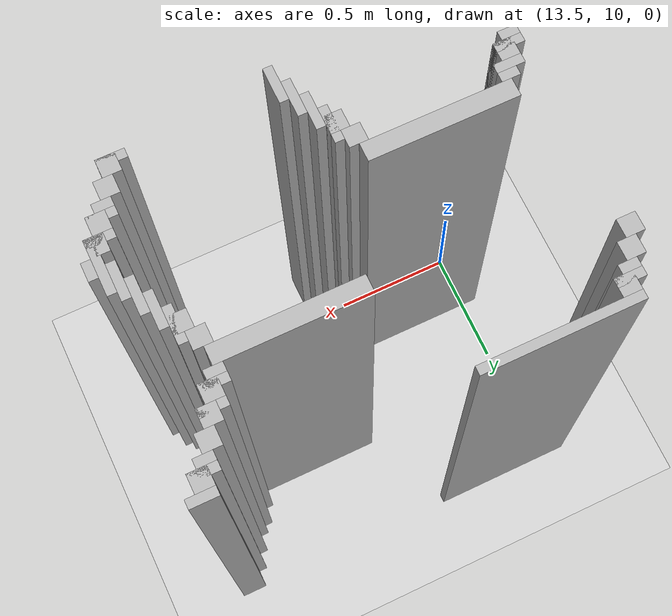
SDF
<sdf version="1.6">
 <world name="slam_world">
  <model name="ground_plane">
   <static>true</static>
   <link name="link">
    <collision name="collision">
     <geometry><plane><normal>0 0 1</normal><size>100 100</size></plane></geometry>
    </collision>
    <visual name="visual">
     <geometry><plane><normal>0 0 1</normal><size>100 100</size></plane></geometry>
     <material>
      <ambient>0.8 0.8 0.8 1</ambient>
      <diffuse>0.8 0.8 0.8 1</diffuse>
      <specular>0.8 0.8 0.8 1</specular>
     </material>
    </visual>
   </link>
  </model>
  <model name="wall_2195">
   <static>true</static>
   <pose>13.694895591647331 11.01508120649652 1.0 0 0 0</pose>
   <link name="link">
    <collision name="collision">
     <geometry><box><size>0.5916473317865429 0.03480278422273782 2.0</size></box></geometry>
    </collision>
    <visual name="visual">
     <geometry><box><size>0.5916473317865429 0.03480278422273782 2.0</size></box></geometry>
     <material><ambient>0.5 0.5 0.5 1</ambient><diffuse>0.7 0.7 0.7 1</diffuse></material>
    </visual>
   </link>
  </model>
  <model name="wall_2196">
   <static>true</static>
   <pose>14.912993039443155 11.01508120649652 1.0 0 0 0</pose>
   <link name="link">
    <collision name="collision">
     <geometry><box><size>0.10440835266821345 0.03480278422273782 2.0</size></box></geometry>
    </collision>
    <visual name="visual">
     <geometry><box><size>0.10440835266821345 0.03480278422273782 2.0</size></box></geometry>
     <material><ambient>0.5 0.5 0.5 1</ambient><diffuse>0.7 0.7 0.7 1</diffuse></material>
    </visual>
   </link>
  </model>
  <model name="wall_2207">
   <static>true</static>
   <pose>13.433874709976797 10.962877030162412 1.0 0 0 0</pose>
   <link name="link">
    <collision name="collision">
     <geometry><box><size>0.06960556844547564 0.06960556844547564 2.0</size></box></geometry>
    </collision>
    <visual name="visual">
     <geometry><box><size>0.06960556844547564 0.06960556844547564 2.0</size></box></geometry>
     <material><ambient>0.5 0.5 0.5 1</ambient><diffuse>0.7 0.7 0.7 1</diffuse></material>
    </visual>
   </link>
  </model>
  <model name="wall_2208">
   <static>true</static>
   <pose>14.895591647331786 10.962877030162412 1.0 0 0 0</pose>
   <link name="link">
    <collision name="collision">
     <geometry><box><size>0.06960556844547564 0.06960556844547564 2.0</size></box></geometry>
    </collision>
    <visual name="visual">
     <geometry><box><size>0.06960556844547564 0.06960556844547564 2.0</size></box></geometry>
     <material><ambient>0.5 0.5 0.5 1</ambient><diffuse>0.7 0.7 0.7 1</diffuse></material>
    </visual>
   </link>
  </model>
  <model name="wall_2219">
   <static>true</static>
   <pose>13.416473317865428 10.945475638051043 1.0 0 0 0</pose>
   <link name="link">
    <collision name="collision">
     <geometry><box><size>0.10440835266821345 0.03480278422273782 2.0</size></box></geometry>
    </collision>
    <visual name="visual">
     <geometry><box><size>0.10440835266821345 0.03480278422273782 2.0</size></box></geometry>
     <material><ambient>0.5 0.5 0.5 1</ambient><diffuse>0.7 0.7 0.7 1</diffuse></material>
    </visual>
   </link>
  </model>
  <model name="wall_2220">
   <static>true</static>
   <pose>14.878190255220417 10.945475638051043 1.0 0 0 0</pose>
   <link name="link">
    <collision name="collision">
     <geometry><box><size>0.10440835266821345 0.03480278422273782 2.0</size></box></geometry>
    </collision>
    <visual name="visual">
     <geometry><box><size>0.10440835266821345 0.03480278422273782 2.0</size></box></geometry>
     <material><ambient>0.5 0.5 0.5 1</ambient><diffuse>0.7 0.7 0.7 1</diffuse></material>
    </visual>
   </link>
  </model>
  <model name="wall_2226">
   <static>true</static>
   <pose>13.39907192575406 10.910672853828306 1.0 0 0 0</pose>
   <link name="link">
    <collision name="collision">
     <geometry><box><size>0.06960556844547564 0.03480278422273782 2.0</size></box></geometry>
    </collision>
    <visual name="visual">
     <geometry><box><size>0.06960556844547564 0.03480278422273782 2.0</size></box></geometry>
     <material><ambient>0.5 0.5 0.5 1</ambient><diffuse>0.7 0.7 0.7 1</diffuse></material>
    </visual>
   </link>
  </model>
  <model name="wall_2227">
   <static>true</static>
   <pose>14.860788863109049 10.910672853828306 1.0 0 0 0</pose>
   <link name="link">
    <collision name="collision">
     <geometry><box><size>0.06960556844547564 0.03480278422273782 2.0</size></box></geometry>
    </collision>
    <visual name="visual">
     <geometry><box><size>0.06960556844547564 0.03480278422273782 2.0</size></box></geometry>
     <material><ambient>0.5 0.5 0.5 1</ambient><diffuse>0.7 0.7 0.7 1</diffuse></material>
    </visual>
   </link>
  </model>
  <model name="wall_2238">
   <static>true</static>
   <pose>13.364269141531322 10.8584686774942 1.0 0 0 0</pose>
   <link name="link">
    <collision name="collision">
     <geometry><box><size>0.06960556844547564 0.06960556844547564 2.0</size></box></geometry>
    </collision>
    <visual name="visual">
     <geometry><box><size>0.06960556844547564 0.06960556844547564 2.0</size></box></geometry>
     <material><ambient>0.5 0.5 0.5 1</ambient><diffuse>0.7 0.7 0.7 1</diffuse></material>
    </visual>
   </link>
  </model>
  <model name="wall_2239">
   <static>true</static>
   <pose>14.825986078886311 10.8584686774942 1.0 0 0 0</pose>
   <link name="link">
    <collision name="collision">
     <geometry><box><size>0.06960556844547564 0.06960556844547564 2.0</size></box></geometry>
    </collision>
    <visual name="visual">
     <geometry><box><size>0.06960556844547564 0.06960556844547564 2.0</size></box></geometry>
     <material><ambient>0.5 0.5 0.5 1</ambient><diffuse>0.7 0.7 0.7 1</diffuse></material>
    </visual>
   </link>
  </model>
  <model name="wall_2250">
   <static>true</static>
   <pose>13.329466357308585 10.788863109048723 1.0 0 0 0</pose>
   <link name="link">
    <collision name="collision">
     <geometry><box><size>0.06960556844547564 0.06960556844547564 2.0</size></box></geometry>
    </collision>
    <visual name="visual">
     <geometry><box><size>0.06960556844547564 0.06960556844547564 2.0</size></box></geometry>
     <material><ambient>0.5 0.5 0.5 1</ambient><diffuse>0.7 0.7 0.7 1</diffuse></material>
    </visual>
   </link>
  </model>
  <model name="wall_2251">
   <static>true</static>
   <pose>14.791183294663572 10.788863109048723 1.0 0 0 0</pose>
   <link name="link">
    <collision name="collision">
     <geometry><box><size>0.06960556844547564 0.06960556844547564 2.0</size></box></geometry>
    </collision>
    <visual name="visual">
     <geometry><box><size>0.06960556844547564 0.06960556844547564 2.0</size></box></geometry>
     <material><ambient>0.5 0.5 0.5 1</ambient><diffuse>0.7 0.7 0.7 1</diffuse></material>
    </visual>
   </link>
  </model>
  <model name="wall_2263">
   <static>true</static>
   <pose>14.773781902552203 10.771461716937354 1.0 0 0 0</pose>
   <link name="link">
    <collision name="collision">
     <geometry><box><size>0.10440835266821345 0.03480278422273782 2.0</size></box></geometry>
    </collision>
    <visual name="visual">
     <geometry><box><size>0.10440835266821345 0.03480278422273782 2.0</size></box></geometry>
     <material><ambient>0.5 0.5 0.5 1</ambient><diffuse>0.7 0.7 0.7 1</diffuse></material>
    </visual>
   </link>
  </model>
  <model name="wall_2269">
   <static>true</static>
   <pose>14.756380510440835 10.719257540603248 1.0 0 0 0</pose>
   <link name="link">
    <collision name="collision">
     <geometry><box><size>0.06960556844547564 0.06960556844547564 2.0</size></box></geometry>
    </collision>
    <visual name="visual">
     <geometry><box><size>0.06960556844547564 0.06960556844547564 2.0</size></box></geometry>
     <material><ambient>0.5 0.5 0.5 1</ambient><diffuse>0.7 0.7 0.7 1</diffuse></material>
    </visual>
   </link>
  </model>
  <model name="wall_2281">
   <static>true</static>
   <pose>14.738979118329466 10.70185614849188 1.0 0 0 0</pose>
   <link name="link">
    <collision name="collision">
     <geometry><box><size>0.10440835266821345 0.03480278422273782 2.0</size></box></geometry>
    </collision>
    <visual name="visual">
     <geometry><box><size>0.10440835266821345 0.03480278422273782 2.0</size></box></geometry>
     <material><ambient>0.5 0.5 0.5 1</ambient><diffuse>0.7 0.7 0.7 1</diffuse></material>
    </visual>
   </link>
  </model>
  <model name="wall_2287">
   <static>true</static>
   <pose>14.721577726218097 10.66705336426914 1.0 0 0 0</pose>
   <link name="link">
    <collision name="collision">
     <geometry><box><size>0.06960556844547564 0.03480278422273782 2.0</size></box></geometry>
    </collision>
    <visual name="visual">
     <geometry><box><size>0.06960556844547564 0.03480278422273782 2.0</size></box></geometry>
     <material><ambient>0.5 0.5 0.5 1</ambient><diffuse>0.7 0.7 0.7 1</diffuse></material>
    </visual>
   </link>
  </model>
  <model name="wall_2300">
   <static>true</static>
   <pose>14.443155452436194 10.614849187935034 1.0 0 0 0</pose>
   <link name="link">
    <collision name="collision">
     <geometry><box><size>0.5568445475638051 0.06960556844547564 2.0</size></box></geometry>
    </collision>
    <visual name="visual">
     <geometry><box><size>0.5568445475638051 0.06960556844547564 2.0</size></box></geometry>
     <material><ambient>0.5 0.5 0.5 1</ambient><diffuse>0.7 0.7 0.7 1</diffuse></material>
    </visual>
   </link>
  </model>
  <model name="wall_2311">
   <static>true</static>
   <pose>14.721577726218097 10.54524361948956 1.0 0 0 0</pose>
   <link name="link">
    <collision name="collision">
     <geometry><box><size>0.06960556844547564 0.06960556844547564 2.0</size></box></geometry>
    </collision>
    <visual name="visual">
     <geometry><box><size>0.06960556844547564 0.06960556844547564 2.0</size></box></geometry>
     <material><ambient>0.5 0.5 0.5 1</ambient><diffuse>0.7 0.7 0.7 1</diffuse></material>
    </visual>
   </link>
  </model>
  <model name="wall_2322">
   <static>true</static>
   <pose>14.773781902552203 10.475638051044083 1.0 0 0 0</pose>
   <link name="link">
    <collision name="collision">
     <geometry><box><size>0.03480278422273782 0.13921113689095127 2.0</size></box></geometry>
    </collision>
    <visual name="visual">
     <geometry><box><size>0.03480278422273782 0.13921113689095127 2.0</size></box></geometry>
     <material><ambient>0.5 0.5 0.5 1</ambient><diffuse>0.7 0.7 0.7 1</diffuse></material>
    </visual>
   </link>
  </model>
  <model name="wall_2333">
   <static>true</static>
   <pose>14.756380510440835 10.475638051044083 1.0 0 0 0</pose>
   <link name="link">
    <collision name="collision">
     <geometry><box><size>0.06960556844547564 0.06960556844547564 2.0</size></box></geometry>
    </collision>
    <visual name="visual">
     <geometry><box><size>0.06960556844547564 0.06960556844547564 2.0</size></box></geometry>
     <material><ambient>0.5 0.5 0.5 1</ambient><diffuse>0.7 0.7 0.7 1</diffuse></material>
    </visual>
   </link>
  </model>
  <model name="wall_2344">
   <static>true</static>
   <pose>14.80858468677494 10.406032482598608 1.0 0 0 0</pose>
   <link name="link">
    <collision name="collision">
     <geometry><box><size>0.03480278422273782 0.13921113689095127 2.0</size></box></geometry>
    </collision>
    <visual name="visual">
     <geometry><box><size>0.03480278422273782 0.13921113689095127 2.0</size></box></geometry>
     <material><ambient>0.5 0.5 0.5 1</ambient><diffuse>0.7 0.7 0.7 1</diffuse></material>
    </visual>
   </link>
  </model>
  <model name="wall_2360">
   <static>true</static>
   <pose>14.84338747099768 10.336426914153131 1.0 0 0 0</pose>
   <link name="link">
    <collision name="collision">
     <geometry><box><size>0.03480278422273782 0.13921113689095127 2.0</size></box></geometry>
    </collision>
    <visual name="visual">
     <geometry><box><size>0.03480278422273782 0.13921113689095127 2.0</size></box></geometry>
     <material><ambient>0.5 0.5 0.5 1</ambient><diffuse>0.7 0.7 0.7 1</diffuse></material>
    </visual>
   </link>
  </model>
  <model name="wall_2371">
   <static>true</static>
   <pose>14.878190255220417 10.266821345707656 1.0 0 0 0</pose>
   <link name="link">
    <collision name="collision">
     <geometry><box><size>0.03480278422273782 0.13921113689095127 2.0</size></box></geometry>
    </collision>
    <visual name="visual">
     <geometry><box><size>0.03480278422273782 0.13921113689095127 2.0</size></box></geometry>
     <material><ambient>0.5 0.5 0.5 1</ambient><diffuse>0.7 0.7 0.7 1</diffuse></material>
    </visual>
   </link>
  </model>
  <model name="wall_2382">
   <static>true</static>
   <pose>14.912993039443155 10.19721577726218 1.0 0 0 0</pose>
   <link name="link">
    <collision name="collision">
     <geometry><box><size>0.03480278422273782 0.2088167053364269 2.0</size></box></geometry>
    </collision>
    <visual name="visual">
     <geometry><box><size>0.03480278422273782 0.2088167053364269 2.0</size></box></geometry>
     <material><ambient>0.5 0.5 0.5 1</ambient><diffuse>0.7 0.7 0.7 1</diffuse></material>
    </visual>
   </link>
  </model>
  <model name="wall_2398">
   <static>true</static>
   <pose>13.7122969837587 10.19721577726218 1.0 0 0 0</pose>
   <link name="link">
    <collision name="collision">
     <geometry><box><size>0.5568445475638051 0.06960556844547564 2.0</size></box></geometry>
    </collision>
    <visual name="visual">
     <geometry><box><size>0.5568445475638051 0.06960556844547564 2.0</size></box></geometry>
     <material><ambient>0.5 0.5 0.5 1</ambient><diffuse>0.7 0.7 0.7 1</diffuse></material>
    </visual>
   </link>
  </model>
  <model name="wall_2399">
   <static>true</static>
   <pose>14.947795823665892 10.19721577726218 1.0 0 0 0</pose>
   <link name="link">
    <collision name="collision">
     <geometry><box><size>0.03480278422273782 0.06960556844547564 2.0</size></box></geometry>
    </collision>
    <visual name="visual">
     <geometry><box><size>0.03480278422273782 0.06960556844547564 2.0</size></box></geometry>
     <material><ambient>0.5 0.5 0.5 1</ambient><diffuse>0.7 0.7 0.7 1</diffuse></material>
    </visual>
   </link>
  </model>
  <model name="wall_2416">
   <static>true</static>
   <pose>13.433874709976797 10.127610208816705 1.0 0 0 0</pose>
   <link name="link">
    <collision name="collision">
     <geometry><box><size>0.06960556844547564 0.06960556844547564 2.0</size></box></geometry>
    </collision>
    <visual name="visual">
     <geometry><box><size>0.06960556844547564 0.06960556844547564 2.0</size></box></geometry>
     <material><ambient>0.5 0.5 0.5 1</ambient><diffuse>0.7 0.7 0.7 1</diffuse></material>
    </visual>
   </link>
  </model>
  <model name="wall_2417">
   <static>true</static>
   <pose>13.990719257540603 10.127610208816705 1.0 0 0 0</pose>
   <link name="link">
    <collision name="collision">
     <geometry><box><size>0.06960556844547564 0.06960556844547564 2.0</size></box></geometry>
    </collision>
    <visual name="visual">
     <geometry><box><size>0.06960556844547564 0.06960556844547564 2.0</size></box></geometry>
     <material><ambient>0.5 0.5 0.5 1</ambient><diffuse>0.7 0.7 0.7 1</diffuse></material>
    </visual>
   </link>
  </model>
  <model name="wall_2418">
   <static>true</static>
   <pose>14.895591647331786 10.127610208816705 1.0 0 0 0</pose>
   <link name="link">
    <collision name="collision">
     <geometry><box><size>0.06960556844547564 0.06960556844547564 2.0</size></box></geometry>
    </collision>
    <visual name="visual">
     <geometry><box><size>0.06960556844547564 0.06960556844547564 2.0</size></box></geometry>
     <material><ambient>0.5 0.5 0.5 1</ambient><diffuse>0.7 0.7 0.7 1</diffuse></material>
    </visual>
   </link>
  </model>
  <model name="wall_2430">
   <static>true</static>
   <pose>13.416473317865428 10.110208816705336 1.0 0 0 0</pose>
   <link name="link">
    <collision name="collision">
     <geometry><box><size>0.10440835266821345 0.03480278422273782 2.0</size></box></geometry>
    </collision>
    <visual name="visual">
     <geometry><box><size>0.10440835266821345 0.03480278422273782 2.0</size></box></geometry>
     <material><ambient>0.5 0.5 0.5 1</ambient><diffuse>0.7 0.7 0.7 1</diffuse></material>
    </visual>
   </link>
  </model>
  <model name="wall_2431">
   <static>true</static>
   <pose>14.042923433874709 10.058004640371228 1.0 0 0 0</pose>
   <link name="link">
    <collision name="collision">
     <geometry><box><size>0.03480278422273782 0.13921113689095127 2.0</size></box></geometry>
    </collision>
    <visual name="visual">
     <geometry><box><size>0.03480278422273782 0.13921113689095127 2.0</size></box></geometry>
     <material><ambient>0.5 0.5 0.5 1</ambient><diffuse>0.7 0.7 0.7 1</diffuse></material>
    </visual>
   </link>
  </model>
  <model name="wall_2432">
   <static>true</static>
   <pose>14.878190255220417 10.110208816705336 1.0 0 0 0</pose>
   <link name="link">
    <collision name="collision">
     <geometry><box><size>0.10440835266821345 0.03480278422273782 2.0</size></box></geometry>
    </collision>
    <visual name="visual">
     <geometry><box><size>0.10440835266821345 0.03480278422273782 2.0</size></box></geometry>
     <material><ambient>0.5 0.5 0.5 1</ambient><diffuse>0.7 0.7 0.7 1</diffuse></material>
    </visual>
   </link>
  </model>
  <model name="wall_2444">
   <static>true</static>
   <pose>13.39907192575406 10.058004640371228 1.0 0 0 0</pose>
   <link name="link">
    <collision name="collision">
     <geometry><box><size>0.06960556844547564 0.06960556844547564 2.0</size></box></geometry>
    </collision>
    <visual name="visual">
     <geometry><box><size>0.06960556844547564 0.06960556844547564 2.0</size></box></geometry>
     <material><ambient>0.5 0.5 0.5 1</ambient><diffuse>0.7 0.7 0.7 1</diffuse></material>
    </visual>
   </link>
  </model>
  <model name="wall_2445">
   <static>true</static>
   <pose>14.02552204176334 10.058004640371228 1.0 0 0 0</pose>
   <link name="link">
    <collision name="collision">
     <geometry><box><size>0.06960556844547564 0.06960556844547564 2.0</size></box></geometry>
    </collision>
    <visual name="visual">
     <geometry><box><size>0.06960556844547564 0.06960556844547564 2.0</size></box></geometry>
     <material><ambient>0.5 0.5 0.5 1</ambient><diffuse>0.7 0.7 0.7 1</diffuse></material>
    </visual>
   </link>
  </model>
  <model name="wall_2446">
   <static>true</static>
   <pose>14.860788863109049 10.058004640371228 1.0 0 0 0</pose>
   <link name="link">
    <collision name="collision">
     <geometry><box><size>0.06960556844547564 0.06960556844547564 2.0</size></box></geometry>
    </collision>
    <visual name="visual">
     <geometry><box><size>0.06960556844547564 0.06960556844547564 2.0</size></box></geometry>
     <material><ambient>0.5 0.5 0.5 1</ambient><diffuse>0.7 0.7 0.7 1</diffuse></material>
    </visual>
   </link>
  </model>
  <model name="wall_2458">
   <static>true</static>
   <pose>13.38167053364269 10.04060324825986 1.0 0 0 0</pose>
   <link name="link">
    <collision name="collision">
     <geometry><box><size>0.10440835266821345 0.03480278422273782 2.0</size></box></geometry>
    </collision>
    <visual name="visual">
     <geometry><box><size>0.10440835266821345 0.03480278422273782 2.0</size></box></geometry>
     <material><ambient>0.5 0.5 0.5 1</ambient><diffuse>0.7 0.7 0.7 1</diffuse></material>
    </visual>
   </link>
  </model>
  <model name="wall_2459">
   <static>true</static>
   <pose>14.077726218097448 9.988399071925754 1.0 0 0 0</pose>
   <link name="link">
    <collision name="collision">
     <geometry><box><size>0.03480278422273782 0.13921113689095127 2.0</size></box></geometry>
    </collision>
    <visual name="visual">
     <geometry><box><size>0.03480278422273782 0.13921113689095127 2.0</size></box></geometry>
     <material><ambient>0.5 0.5 0.5 1</ambient><diffuse>0.7 0.7 0.7 1</diffuse></material>
    </visual>
   </link>
  </model>
  <model name="wall_2460">
   <static>true</static>
   <pose>14.84338747099768 10.04060324825986 1.0 0 0 0</pose>
   <link name="link">
    <collision name="collision">
     <geometry><box><size>0.10440835266821345 0.03480278422273782 2.0</size></box></geometry>
    </collision>
    <visual name="visual">
     <geometry><box><size>0.10440835266821345 0.03480278422273782 2.0</size></box></geometry>
     <material><ambient>0.5 0.5 0.5 1</ambient><diffuse>0.7 0.7 0.7 1</diffuse></material>
    </visual>
   </link>
  </model>
  <model name="wall_2467">
   <static>true</static>
   <pose>13.364269141531322 10.005800464037122 1.0 0 0 0</pose>
   <link name="link">
    <collision name="collision">
     <geometry><box><size>0.06960556844547564 0.03480278422273782 2.0</size></box></geometry>
    </collision>
    <visual name="visual">
     <geometry><box><size>0.06960556844547564 0.03480278422273782 2.0</size></box></geometry>
     <material><ambient>0.5 0.5 0.5 1</ambient><diffuse>0.7 0.7 0.7 1</diffuse></material>
    </visual>
   </link>
  </model>
  <model name="wall_2468">
   <static>true</static>
   <pose>14.825986078886311 10.005800464037122 1.0 0 0 0</pose>
   <link name="link">
    <collision name="collision">
     <geometry><box><size>0.06960556844547564 0.03480278422273782 2.0</size></box></geometry>
    </collision>
    <visual name="visual">
     <geometry><box><size>0.06960556844547564 0.03480278422273782 2.0</size></box></geometry>
     <material><ambient>0.5 0.5 0.5 1</ambient><diffuse>0.7 0.7 0.7 1</diffuse></material>
    </visual>
   </link>
  </model>
  <model name="wall_2481">
   <static>true</static>
   <pose>14.112529002320185 9.918793503480279 1.0 0 0 0</pose>
   <link name="link">
    <collision name="collision">
     <geometry><box><size>0.03480278422273782 0.13921113689095127 2.0</size></box></geometry>
    </collision>
    <visual name="visual">
     <geometry><box><size>0.03480278422273782 0.13921113689095127 2.0</size></box></geometry>
     <material><ambient>0.5 0.5 0.5 1</ambient><diffuse>0.7 0.7 0.7 1</diffuse></material>
    </visual>
   </link>
  </model>
  <model name="wall_2482">
   <static>true</static>
   <pose>14.791183294663572 9.953596287703016 1.0 0 0 0</pose>
   <link name="link">
    <collision name="collision">
     <geometry><box><size>0.06960556844547564 0.06960556844547564 2.0</size></box></geometry>
    </collision>
    <visual name="visual">
     <geometry><box><size>0.06960556844547564 0.06960556844547564 2.0</size></box></geometry>
     <material><ambient>0.5 0.5 0.5 1</ambient><diffuse>0.7 0.7 0.7 1</diffuse></material>
    </visual>
   </link>
  </model>
  <model name="wall_2495">
   <static>true</static>
   <pose>14.147331786542923 9.849187935034802 1.0 0 0 0</pose>
   <link name="link">
    <collision name="collision">
     <geometry><box><size>0.03480278422273782 0.13921113689095127 2.0</size></box></geometry>
    </collision>
    <visual name="visual">
     <geometry><box><size>0.03480278422273782 0.13921113689095127 2.0</size></box></geometry>
     <material><ambient>0.5 0.5 0.5 1</ambient><diffuse>0.7 0.7 0.7 1</diffuse></material>
    </visual>
   </link>
  </model>
  <model name="wall_2496">
   <static>true</static>
   <pose>14.756380510440835 9.88399071925754 1.0 0 0 0</pose>
   <link name="link">
    <collision name="collision">
     <geometry><box><size>0.06960556844547564 0.06960556844547564 2.0</size></box></geometry>
    </collision>
    <visual name="visual">
     <geometry><box><size>0.06960556844547564 0.06960556844547564 2.0</size></box></geometry>
     <material><ambient>0.5 0.5 0.5 1</ambient><diffuse>0.7 0.7 0.7 1</diffuse></material>
    </visual>
   </link>
  </model>
  <model name="wall_2510">
   <static>true</static>
   <pose>14.738979118329466 9.86658932714617 1.0 0 0 0</pose>
   <link name="link">
    <collision name="collision">
     <geometry><box><size>0.10440835266821345 0.03480278422273782 2.0</size></box></geometry>
    </collision>
    <visual name="visual">
     <geometry><box><size>0.10440835266821345 0.03480278422273782 2.0</size></box></geometry>
     <material><ambient>0.5 0.5 0.5 1</ambient><diffuse>0.7 0.7 0.7 1</diffuse></material>
    </visual>
   </link>
  </model>
 </world>
</sdf>
